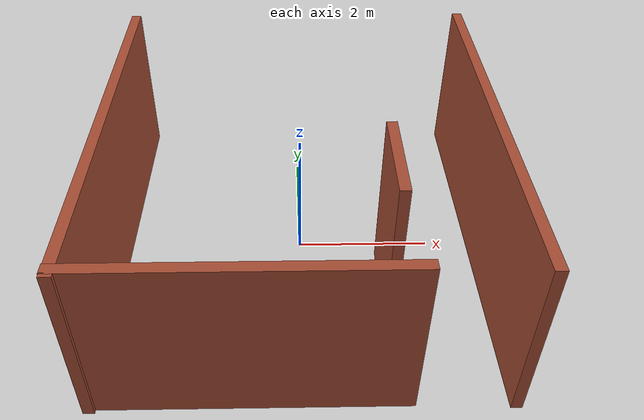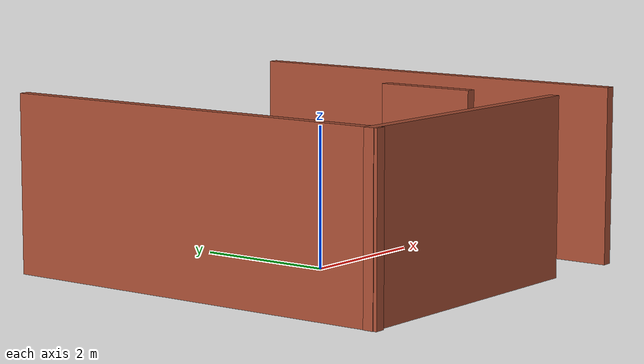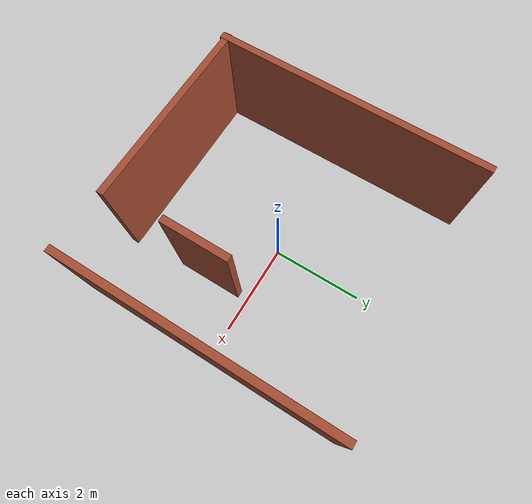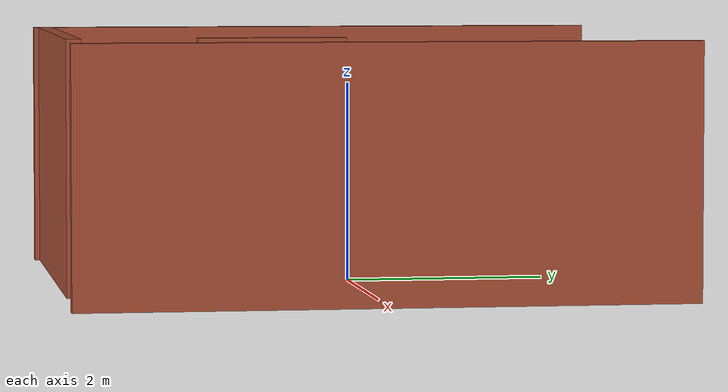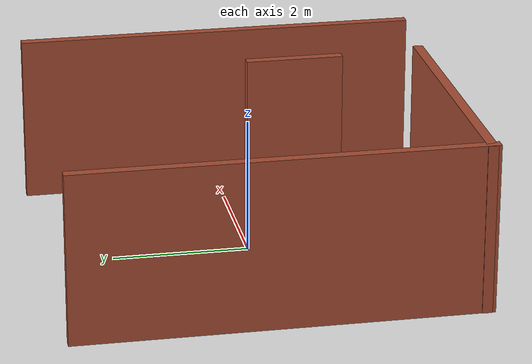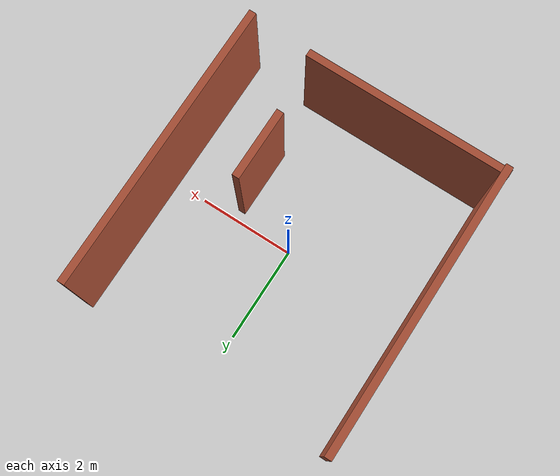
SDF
<?xml version='1.0'?>
<sdf version='1.7'>
  <model name='Room'>
    <link name='Wall_6'>
      <pose>1.24106 -0.929777 0 0 0 -1.57103</pose>
      <self_collide>0</self_collide>
      <enable_wind>0</enable_wind>
      <kinematic>0</kinematic>
      <inertial>
        <inertia>
          <ixx>0</ixx>
          <ixy>0</ixy>
          <ixz>0</ixz>
          <iyy>0</iyy>
          <iyz>0</iyz>
          <izz>0</izz>
        </inertia>
        <mass>0</mass>
        <pose>0 0 0 0 -0 0</pose>
      </inertial>
      <visual name='Wall_6_Visual'>
        <pose>0 0 1.25 0 -0 0</pose>
        <geometry>
          <box>
            <size>1.45267 0.15 2.5</size>
          </box>
        </geometry>
        <material>
          <script>
            <uri>file://media/materials/scripts/gazebo.material</uri>
            <name>Gazebo/Bricks</name>
          </script>
          <ambient>1 1 1 1</ambient>
          <shader type='pixel'/>
        </material>
        <meta>
          <layer>0</layer>
        </meta>
        <transparency>0</transparency>
        <cast_shadows>1</cast_shadows>
      </visual>
      <collision name='Wall_6_Collision'>
        <laser_retro>0</laser_retro>
        <max_contacts>10</max_contacts>
        <pose>0 0 1.25 0 -0 0</pose>
        <geometry>
          <box>
            <size>1.45267 0.15 2.5</size>
          </box>
        </geometry>
        <surface>
          <friction>
            <ode>
              <mu>1</mu>
              <mu2>1</mu2>
              <fdir1>0 0 0</fdir1>
              <slip1>0</slip1>
              <slip2>0</slip2>
            </ode>
            <torsional>
              <coefficient>1</coefficient>
              <patch_radius>0</patch_radius>
              <surface_radius>0</surface_radius>
              <use_patch_radius>1</use_patch_radius>
              <ode>
                <slip>0</slip>
              </ode>
            </torsional>
          </friction>
          <bounce>
            <restitution_coefficient>0</restitution_coefficient>
            <threshold>1e+06</threshold>
          </bounce>
          <contact>
            <collide_without_contact>0</collide_without_contact>
            <collide_without_contact_bitmask>1</collide_without_contact_bitmask>
            <collide_bitmask>1</collide_bitmask>
            <ode>
              <soft_cfm>0</soft_cfm>
              <soft_erp>0.2</soft_erp>
              <kp>1e+13</kp>
              <kd>1</kd>
              <max_vel>0.01</max_vel>
              <min_depth>0</min_depth>
            </ode>
            <bullet>
              <split_impulse>1</split_impulse>
              <split_impulse_penetration_threshold>-0.01</split_impulse_penetration_threshold>
              <soft_cfm>0</soft_cfm>
              <soft_erp>0.2</soft_erp>
              <kp>1e+13</kp>
              <kd>1</kd>
            </bullet>
          </contact>
        </surface>
      </collision>
    </link>
    <link name='Wall_7'>
      <pose>2.70852 0.0015 0 0 0 -1.5708</pose>
      <self_collide>0</self_collide>
      <enable_wind>0</enable_wind>
      <kinematic>0</kinematic>
      <visual name='Wall_7_Visual'>
        <pose>0 0 1.25 0 -0 0</pose>
        <geometry>
          <box>
            <size>5.99409 0.15 2.5</size>
          </box>
        </geometry>
        <material>
          <script>
            <uri>file://media/materials/scripts/gazebo.material</uri>
            <name>Gazebo/Bricks</name>
          </script>
          <ambient>1 1 1 1</ambient>
          <shader type='pixel'/>
        </material>
        <meta>
          <layer>0</layer>
        </meta>
        <transparency>0</transparency>
        <cast_shadows>1</cast_shadows>
      </visual>
      <collision name='Wall_7_Collision'>
        <laser_retro>0</laser_retro>
        <max_contacts>10</max_contacts>
        <pose>0 0 1.25 0 -0 0</pose>
        <geometry>
          <box>
            <size>5.99409 0.15 2.5</size>
          </box>
        </geometry>
        <surface>
          <friction>
            <ode>
              <mu>1</mu>
              <mu2>1</mu2>
              <fdir1>0 0 0</fdir1>
              <slip1>0</slip1>
              <slip2>0</slip2>
            </ode>
            <torsional>
              <coefficient>1</coefficient>
              <patch_radius>0</patch_radius>
              <surface_radius>0</surface_radius>
              <use_patch_radius>1</use_patch_radius>
              <ode>
                <slip>0</slip>
              </ode>
            </torsional>
          </friction>
          <bounce>
            <restitution_coefficient>0</restitution_coefficient>
            <threshold>1e+06</threshold>
          </bounce>
          <contact>
            <collide_without_contact>0</collide_without_contact>
            <collide_without_contact_bitmask>1</collide_without_contact_bitmask>
            <collide_bitmask>1</collide_bitmask>
            <ode>
              <soft_cfm>0</soft_cfm>
              <soft_erp>0.2</soft_erp>
              <kp>1e+13</kp>
              <kd>1</kd>
              <max_vel>0.01</max_vel>
              <min_depth>0</min_depth>
            </ode>
            <bullet>
              <split_impulse>1</split_impulse>
              <split_impulse_penetration_threshold>-0.01</split_impulse_penetration_threshold>
              <soft_cfm>0</soft_cfm>
              <soft_erp>0.2</soft_erp>
              <kp>1e+13</kp>
              <kd>1</kd>
            </bullet>
          </contact>
        </surface>
      </collision>
    </link>
    <link name='Wall_8'>
      <pose>-0.680488 -2.87425 0 0 0 -3.14104</pose>
      <self_collide>0</self_collide>
      <enable_wind>0</enable_wind>
      <kinematic>0</kinematic>
      <inertial>
        <inertia>
          <ixx>0</ixx>
          <ixy>0</ixy>
          <ixz>0</ixz>
          <iyy>0</iyy>
          <iyz>0</iyz>
          <izz>0</izz>
        </inertia>
        <mass>0</mass>
        <pose>0 0 0 0 -0 0</pose>
      </inertial>
      <visual name='Wall_8_Visual'>
        <pose>0 0 1.25 0 -0 0</pose>
        <geometry>
          <box>
            <size>4.2252 0.15 2.5</size>
          </box>
        </geometry>
        <material>
          <script>
            <uri>file://media/materials/scripts/gazebo.material</uri>
            <name>Gazebo/Bricks</name>
          </script>
          <ambient>1 1 1 1</ambient>
          <shader type='pixel'/>
        </material>
        <meta>
          <layer>0</layer>
        </meta>
        <transparency>0</transparency>
        <cast_shadows>1</cast_shadows>
      </visual>
      <collision name='Wall_8_Collision'>
        <laser_retro>0</laser_retro>
        <max_contacts>10</max_contacts>
        <pose>0 0 1.25 0 -0 0</pose>
        <geometry>
          <box>
            <size>4.2252 0.15 2.5</size>
          </box>
        </geometry>
        <surface>
          <friction>
            <ode>
              <mu>1</mu>
              <mu2>1</mu2>
              <fdir1>0 0 0</fdir1>
              <slip1>0</slip1>
              <slip2>0</slip2>
            </ode>
            <torsional>
              <coefficient>1</coefficient>
              <patch_radius>0</patch_radius>
              <surface_radius>0</surface_radius>
              <use_patch_radius>1</use_patch_radius>
              <ode>
                <slip>0</slip>
              </ode>
            </torsional>
          </friction>
          <bounce>
            <restitution_coefficient>0</restitution_coefficient>
            <threshold>1e+06</threshold>
          </bounce>
          <contact>
            <collide_without_contact>0</collide_without_contact>
            <collide_without_contact_bitmask>1</collide_without_contact_bitmask>
            <collide_bitmask>1</collide_bitmask>
            <ode>
              <soft_cfm>0</soft_cfm>
              <soft_erp>0.2</soft_erp>
              <kp>1e+13</kp>
              <kd>1</kd>
              <max_vel>0.01</max_vel>
              <min_depth>0</min_depth>
            </ode>
            <bullet>
              <split_impulse>1</split_impulse>
              <split_impulse_penetration_threshold>-0.01</split_impulse_penetration_threshold>
              <soft_cfm>0</soft_cfm>
              <soft_erp>0.2</soft_erp>
              <kp>1e+13</kp>
              <kd>1</kd>
            </bullet>
          </contact>
        </surface>
      </collision>
    </link>
    <link name='Wall_9'>
      <pose>-2.70848 -0.0015 0 0 -0 1.5708</pose>
      <self_collide>0</self_collide>
      <enable_wind>0</enable_wind>
      <kinematic>0</kinematic>
      <visual name='Wall_9_Visual'>
        <pose>0 0 1.25 0 -0 0</pose>
        <geometry>
          <box>
            <size>5.99412 0.15 2.5</size>
          </box>
        </geometry>
        <material>
          <script>
            <uri>file://media/materials/scripts/gazebo.material</uri>
            <name>Gazebo/Bricks</name>
          </script>
          <ambient>1 1 1 1</ambient>
          <shader type='pixel'/>
        </material>
        <meta>
          <layer>0</layer>
        </meta>
        <transparency>0</transparency>
        <cast_shadows>1</cast_shadows>
      </visual>
      <collision name='Wall_9_Collision'>
        <laser_retro>0</laser_retro>
        <max_contacts>10</max_contacts>
        <pose>0 0 1.25 0 -0 0</pose>
        <geometry>
          <box>
            <size>5.99412 0.15 2.5</size>
          </box>
        </geometry>
        <surface>
          <friction>
            <ode>
              <mu>1</mu>
              <mu2>1</mu2>
              <fdir1>0 0 0</fdir1>
              <slip1>0</slip1>
              <slip2>0</slip2>
            </ode>
            <torsional>
              <coefficient>1</coefficient>
              <patch_radius>0</patch_radius>
              <surface_radius>0</surface_radius>
              <use_patch_radius>1</use_patch_radius>
              <ode>
                <slip>0</slip>
              </ode>
            </torsional>
          </friction>
          <bounce>
            <restitution_coefficient>0</restitution_coefficient>
            <threshold>1e+06</threshold>
          </bounce>
          <contact>
            <collide_without_contact>0</collide_without_contact>
            <collide_without_contact_bitmask>1</collide_without_contact_bitmask>
            <collide_bitmask>1</collide_bitmask>
            <ode>
              <soft_cfm>0</soft_cfm>
              <soft_erp>0.2</soft_erp>
              <kp>1e+13</kp>
              <kd>1</kd>
              <max_vel>0.01</max_vel>
              <min_depth>0</min_depth>
            </ode>
            <bullet>
              <split_impulse>1</split_impulse>
              <split_impulse_penetration_threshold>-0.01</split_impulse_penetration_threshold>
              <soft_cfm>0</soft_cfm>
              <soft_erp>0.2</soft_erp>
              <kp>1e+13</kp>
              <kd>1</kd>
            </bullet>
          </contact>
        </surface>
      </collision>
    </link>
    <static>1</static>
    <allow_auto_disable>1</allow_auto_disable>
  </model>
</sdf>
